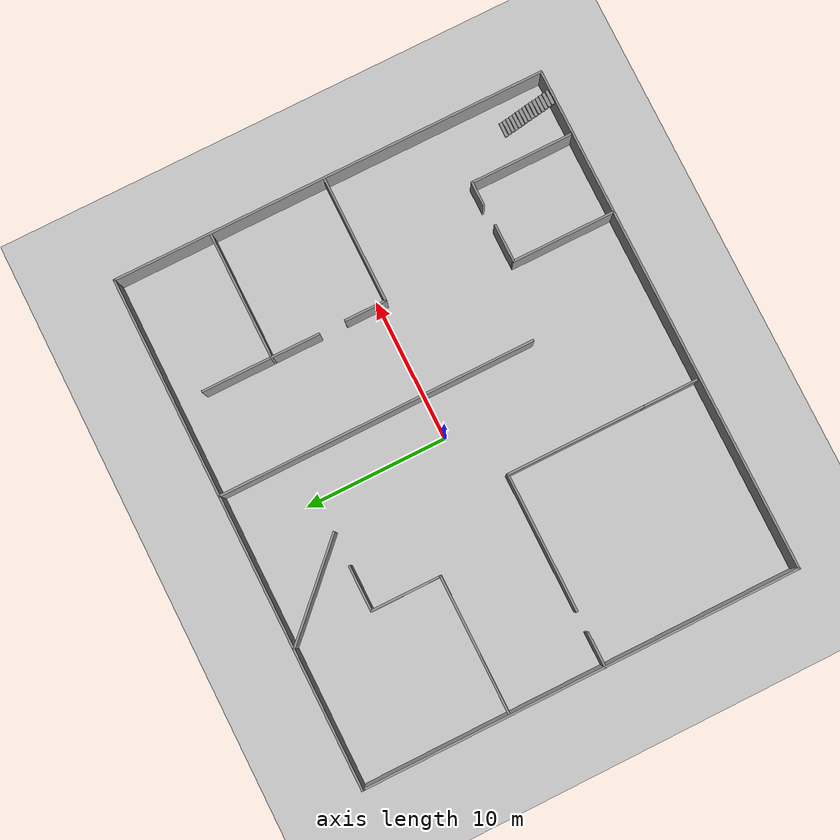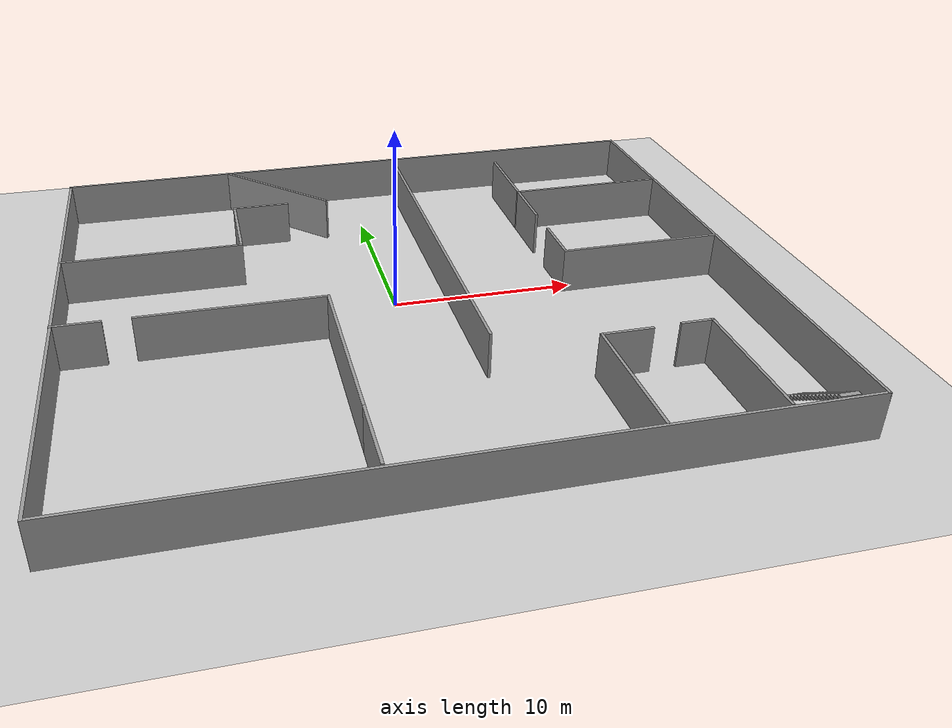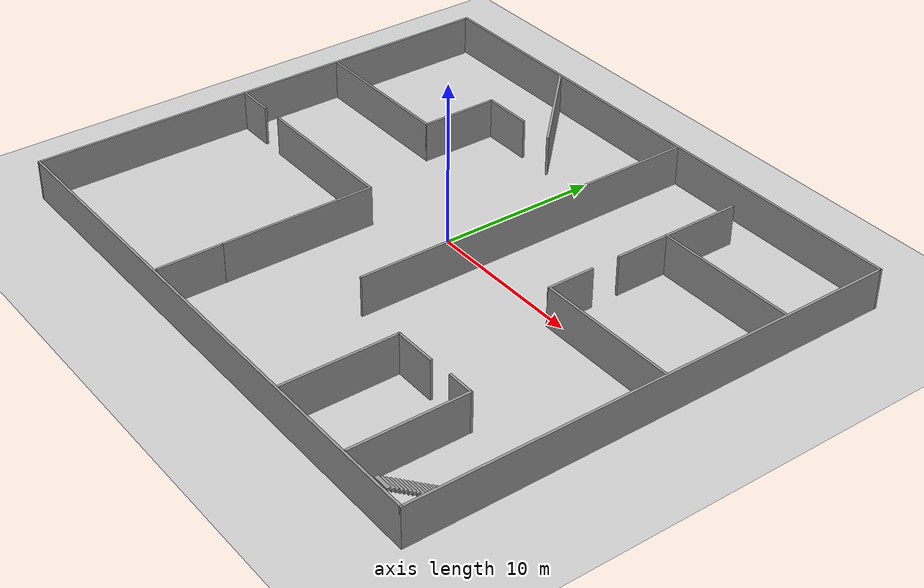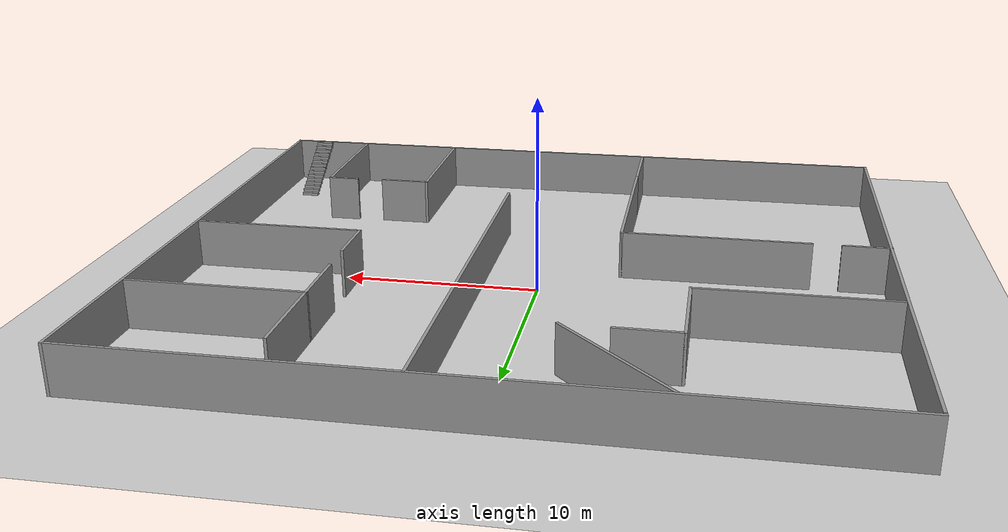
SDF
<sdf version="1.6">
 <world name="default">
  <light name="sun" type="directional">
   <pose>0 0 10 0 -0 0</pose>
   <diffuse>0.8 0.8 0.8 1</diffuse>
   <specular>0.2 0.2 0.2 1</specular>
   <attenuation>
    <range>1000</range>
    <constant>0.9</constant>
    <linear>0.01</linear>
    <quadratic>0.001</quadratic>
   </attenuation>
   <direction>-0.5 0.1 -0.9</direction>
   <spot><inner_angle>0</inner_angle><outer_angle>0</outer_angle><falloff>0</falloff></spot>
  </light>
  <model name="ground_plane">
   <static>1</static>
   <link name="link">
    <collision name="collision">
     <geometry><plane><normal>0 0 1</normal><size>100 100</size></plane></geometry>
     <surface><friction><ode><mu>100</mu><mu2>50</mu2></ode></friction></surface>
    </collision>
    <visual name="visual">
     <cast_shadows>0</cast_shadows>
     <geometry><plane><normal>0 0 1</normal><size>100 100</size></plane></geometry>
     <material>
      <script><uri>file://media/materials/scripts/gazebo.material</uri><name>Gazebo/Grey</name></script>
     </material>
    </visual>
   </link>
  </model>
  <gravity>0 0 -9.8</gravity>
  <magnetic_field>6e-06 2.3e-05 -4.2e-05</magnetic_field>
  <atmosphere type="adiabatic"/>
  <physics type="ode">
   <max_step_size>0.001</max_step_size>
   <real_time_factor>1</real_time_factor>
   <real_time_update_rate>1000</real_time_update_rate>
  </physics>
  <scene><ambient>0.4 0.4 0.4 1</ambient><background>0.7 0.7 0.7 1</background><shadows>1</shadows></scene>
  <spherical_coordinates>
   <surface_model>EARTH_WGS84</surface_model>
   <latitude_deg>0</latitude_deg>
   <longitude_deg>0</longitude_deg>
   <elevation>0</elevation>
   <heading_deg>0</heading_deg>
  </spherical_coordinates>
  <model name="Warehouse">
   <pose>5.0522 -0.852766 0 0 -0 0</pose>
   <link name="Stairs_0">
    <visual name="Stairs_0_Visual_0">
     <pose>11.55 -11.7825 0.083333 0 -0 0</pose>
     <geometry><box><size>1 0.233333 0.166667</size></box></geometry>
     <material>
      <script><uri>file://media/materials/scripts/gazebo.material</uri><name>Gazebo/Grey</name></script>
      <ambient>1 1 1 1</ambient>
     </material>
     <meta><layer>0</layer></meta>
    </visual>
    <collision name="Stairs_0_Collision_0">
     <geometry><box><size>1 0.233333 0.166667</size></box></geometry>
     <pose>11.55 -11.7825 0.083333 0 -0 0</pose>
    </collision>
    <visual name="Stairs_0_Visual_1">
     <pose>11.55 -12.0159 0.25 0 -0 0</pose>
     <geometry><box><size>1 0.233333 0.166667</size></box></geometry>
     <material>
      <script><uri>file://media/materials/scripts/gazebo.material</uri><name>Gazebo/Grey</name></script>
      <ambient>1 1 1 1</ambient>
     </material>
     <meta><layer>0</layer></meta>
    </visual>
    <collision name="Stairs_0_Collision_1">
     <geometry><box><size>1 0.233333 0.166667</size></box></geometry>
     <pose>11.55 -12.0159 0.25 0 -0 0</pose>
    </collision>
    <visual name="Stairs_0_Visual_2">
     <pose>11.55 -12.2492 0.416667 0 -0 0</pose>
     <geometry><box><size>1 0.233333 0.166667</size></box></geometry>
     <material>
      <script><uri>file://media/materials/scripts/gazebo.material</uri><name>Gazebo/Grey</name></script>
      <ambient>1 1 1 1</ambient>
     </material>
     <meta><layer>0</layer></meta>
    </visual>
    <collision name="Stairs_0_Collision_2">
     <geometry><box><size>1 0.233333 0.166667</size></box></geometry>
     <pose>11.55 -12.2492 0.416667 0 -0 0</pose>
    </collision>
    <visual name="Stairs_0_Visual_3">
     <pose>11.55 -12.4825 0.583333 0 -0 0</pose>
     <geometry><box><size>1 0.233333 0.166667</size></box></geometry>
     <material>
      <script><uri>file://media/materials/scripts/gazebo.material</uri><name>Gazebo/Grey</name></script>
      <ambient>1 1 1 1</ambient>
     </material>
     <meta><layer>0</layer></meta>
    </visual>
    <collision name="Stairs_0_Collision_3">
     <geometry><box><size>1 0.233333 0.166667</size></box></geometry>
     <pose>11.55 -12.4825 0.583333 0 -0 0</pose>
    </collision>
    <visual name="Stairs_0_Visual_4">
     <pose>11.55 -12.7159 0.75 0 -0 0</pose>
     <geometry><box><size>1 0.233333 0.166667</size></box></geometry>
     <material>
      <script><uri>file://media/materials/scripts/gazebo.material</uri><name>Gazebo/Grey</name></script>
      <ambient>1 1 1 1</ambient>
     </material>
     <meta><layer>0</layer></meta>
    </visual>
    <collision name="Stairs_0_Collision_4">
     <geometry><box><size>1 0.233333 0.166667</size></box></geometry>
     <pose>11.55 -12.7159 0.75 0 -0 0</pose>
    </collision>
    <visual name="Stairs_0_Visual_5">
     <pose>11.55 -12.9492 0.916667 0 -0 0</pose>
     <geometry><box><size>1 0.233333 0.166667</size></box></geometry>
     <material>
      <script><uri>file://media/materials/scripts/gazebo.material</uri><name>Gazebo/Grey</name></script>
      <ambient>1 1 1 1</ambient>
     </material>
     <meta><layer>0</layer></meta>
    </visual>
    <collision name="Stairs_0_Collision_5">
     <geometry><box><size>1 0.233333 0.166667</size></box></geometry>
     <pose>11.55 -12.9492 0.916667 0 -0 0</pose>
    </collision>
    <visual name="Stairs_0_Visual_6">
     <pose>11.55 -13.1825 1.08333 0 -0 0</pose>
     <geometry><box><size>1 0.233333 0.166667</size></box></geometry>
     <material>
      <script><uri>file://media/materials/scripts/gazebo.material</uri><name>Gazebo/Grey</name></script>
      <ambient>1 1 1 1</ambient>
     </material>
     <meta><layer>0</layer></meta>
    </visual>
    <collision name="Stairs_0_Collision_6">
     <geometry><box><size>1 0.233333 0.166667</size></box></geometry>
     <pose>11.55 -13.1825 1.08333 0 -0 0</pose>
    </collision>
    <visual name="Stairs_0_Visual_7">
     <pose>11.55 -13.4159 1.25 0 -0 0</pose>
     <geometry><box><size>1 0.233333 0.166667</size></box></geometry>
     <material>
      <script><uri>file://media/materials/scripts/gazebo.material</uri><name>Gazebo/Grey</name></script>
      <ambient>1 1 1 1</ambient>
     </material>
     <meta><layer>0</layer></meta>
    </visual>
    <collision name="Stairs_0_Collision_7">
     <geometry><box><size>1 0.233333 0.166667</size></box></geometry>
     <pose>11.55 -13.4159 1.25 0 -0 0</pose>
    </collision>
    <visual name="Stairs_0_Visual_8">
     <pose>11.55 -13.6492 1.41667 0 -0 0</pose>
     <geometry><box><size>1 0.233333 0.166667</size></box></geometry>
     <material>
      <script><uri>file://media/materials/scripts/gazebo.material</uri><name>Gazebo/Grey</name></script>
      <ambient>1 1 1 1</ambient>
     </material>
     <meta><layer>0</layer></meta>
    </visual>
    <collision name="Stairs_0_Collision_8">
     <geometry><box><size>1 0.233333 0.166667</size></box></geometry>
     <pose>11.55 -13.6492 1.41667 0 -0 0</pose>
    </collision>
    <visual name="Stairs_0_Visual_9">
     <pose>11.55 -13.8825 1.58333 0 -0 0</pose>
     <geometry><box><size>1 0.233333 0.166667</size></box></geometry>
     <material>
      <script><uri>file://media/materials/scripts/gazebo.material</uri><name>Gazebo/Grey</name></script>
      <ambient>1 1 1 1</ambient>
     </material>
     <meta><layer>0</layer></meta>
    </visual>
    <collision name="Stairs_0_Collision_9">
     <geometry><box><size>1 0.233333 0.166667</size></box></geometry>
     <pose>11.55 -13.8825 1.58333 0 -0 0</pose>
    </collision>
    <visual name="Stairs_0_Visual_10">
     <pose>11.55 -14.1159 1.75 0 -0 0</pose>
     <geometry><box><size>1 0.233333 0.166667</size></box></geometry>
     <material>
      <script><uri>file://media/materials/scripts/gazebo.material</uri><name>Gazebo/Grey</name></script>
      <ambient>1 1 1 1</ambient>
     </material>
     <meta><layer>0</layer></meta>
    </visual>
    <collision name="Stairs_0_Collision_10">
     <geometry><box><size>1 0.233333 0.166667</size></box></geometry>
     <pose>11.55 -14.1159 1.75 0 -0 0</pose>
    </collision>
    <visual name="Stairs_0_Visual_11">
     <pose>11.55 -14.3492 1.91667 0 -0 0</pose>
     <geometry><box><size>1 0.233333 0.166667</size></box></geometry>
     <material>
      <script><uri>file://media/materials/scripts/gazebo.material</uri><name>Gazebo/Grey</name></script>
      <ambient>1 1 1 1</ambient>
     </material>
     <meta><layer>0</layer></meta>
    </visual>
    <collision name="Stairs_0_Collision_11">
     <geometry><box><size>1 0.233333 0.166667</size></box></geometry>
     <pose>11.55 -14.3492 1.91667 0 -0 0</pose>
    </collision>
    <visual name="Stairs_0_Visual_12">
     <pose>11.55 -14.5825 2.08333 0 -0 0</pose>
     <geometry><box><size>1 0.233333 0.166667</size></box></geometry>
     <material>
      <script><uri>file://media/materials/scripts/gazebo.material</uri><name>Gazebo/Grey</name></script>
      <ambient>1 1 1 1</ambient>
     </material>
     <meta><layer>0</layer></meta>
    </visual>
    <collision name="Stairs_0_Collision_12">
     <geometry><box><size>1 0.233333 0.166667</size></box></geometry>
     <pose>11.55 -14.5825 2.08333 0 -0 0</pose>
    </collision>
    <visual name="Stairs_0_Visual_13">
     <pose>11.55 -14.8159 2.25 0 -0 0</pose>
     <geometry><box><size>1 0.233333 0.166667</size></box></geometry>
     <material>
      <script><uri>file://media/materials/scripts/gazebo.material</uri><name>Gazebo/Grey</name></script>
      <ambient>1 1 1 1</ambient>
     </material>
     <meta><layer>0</layer></meta>
    </visual>
    <collision name="Stairs_0_Collision_13">
     <geometry><box><size>1 0.233333 0.166667</size></box></geometry>
     <pose>11.55 -14.8159 2.25 0 -0 0</pose>
    </collision>
    <visual name="Stairs_0_Visual_14">
     <pose>11.55 -15.0492 2.41667 0 -0 0</pose>
     <geometry><box><size>1 0.233333 0.166667</size></box></geometry>
     <material>
      <script><uri>file://media/materials/scripts/gazebo.material</uri><name>Gazebo/Grey</name></script>
      <ambient>1 1 1 1</ambient>
     </material>
     <meta><layer>0</layer></meta>
    </visual>
    <collision name="Stairs_0_Collision_14">
     <geometry><box><size>1 0.233333 0.166667</size></box></geometry>
     <pose>11.55 -15.0492 2.41667 0 -0 0</pose>
    </collision>
   </link>
   <link name="Wall_0">
    <collision name="Wall_0_Collision">
     <geometry><box><size>30.5 0.15 2.5</size></box></geometry>
     <pose>0 0 1.25 0 -0 0</pose>
    </collision>
    <visual name="Wall_0_Visual">
     <pose>0 0 1.25 0 -0 0</pose>
     <geometry><box><size>30.5 0.15 2.5</size></box></geometry>
     <material>
      <script><uri>file://media/materials/scripts/gazebo.material</uri><name>Gazebo/Grey</name></script>
      <ambient>1 1 1 1</ambient>
     </material>
     <meta><layer>0</layer></meta>
    </visual>
    <pose>-22.5188 -0.125 0 0 -0 -1.5708</pose>
   </link>
   <link name="Wall_1">
    <collision name="Wall_1_Collision">
     <geometry><box><size>36 0.15 2.5</size></box></geometry>
     <pose>0 0 1.25 0 -0 0</pose>
    </collision>
    <visual name="Wall_1_Visual">
     <pose>0 0 1.25 0 -0 0</pose>
     <geometry><box><size>36 0.15 2.5</size></box></geometry>
     <material>
      <script><uri>file://media/materials/scripts/gazebo.material</uri><name>Gazebo/Grey</name></script>
      <ambient>1 1 1 1</ambient>
     </material>
     <meta><layer>0</layer></meta>
    </visual>
    <pose>-4.59381 -15.3 0 0 -0 0</pose>
   </link>
   <link name="Wall_10">
    <collision name="Wall_10_Collision">
     <geometry><box><size>3 0.15 2.5</size></box></geometry>
     <pose>0 0 1.25 0 -0 0</pose>
    </collision>
    <visual name="Wall_10_Visual">
     <pose>0 0 1.25 0 -0 0</pose>
     <geometry><box><size>3 0.15 2.5</size></box></geometry>
     <material>
      <script><uri>file://media/materials/scripts/gazebo.material</uri><name>Gazebo/Grey</name></script>
      <ambient>1 1 1 1</ambient>
     </material>
     <meta><layer>0</layer></meta>
    </visual>
    <pose>4.38435 1.78761 0 0 -0 -1.5708</pose>
   </link>
   <link name="Wall_11">
    <collision name="Wall_11_Collision">
     <geometry><box><size>9 0.15 2.5</size></box></geometry>
     <pose>0 0 1.25 0 -0 0</pose>
    </collision>
    <visual name="Wall_11_Visual">
     <pose>0 0 1.25 0 -0 0</pose>
     <geometry><box><size>9 0.15 2.5</size></box></geometry>
     <material>
      <script><uri>file://media/materials/scripts/gazebo.material</uri><name>Gazebo/Grey</name></script>
      <ambient>1 1 1 1</ambient>
     </material>
     <meta><layer>0</layer></meta>
    </visual>
    <pose>8.80935 0.36261 0 0 -0 0</pose>
   </link>
   <link name="Wall_13">
    <collision name="Wall_13_Collision">
     <geometry><box><size>22.25 0.15 2.5</size></box></geometry>
     <pose>0 0 1.25 0 -0 0</pose>
    </collision>
    <visual name="Wall_13_Visual">
     <pose>0 0 1.25 0 -0 0</pose>
     <geometry><box><size>22.25 0.15 2.5</size></box></geometry>
     <material>
      <script><uri>file://media/materials/scripts/gazebo.material</uri><name>Gazebo/Grey</name></script>
      <ambient>1 1 1 1</ambient>
     </material>
     <meta><layer>0</layer></meta>
    </visual>
    <pose>-2.12024 4.17658 0 0 -0 -1.5708</pose>
   </link>
   <link name="Wall_15">
    <collision name="Wall_15_Collision">
     <geometry><box><size>7.75 0.15 2.5</size></box></geometry>
     <pose>0 0 1.25 0 -0 0</pose>
    </collision>
    <visual name="Wall_15_Visual">
     <pose>0 0 1.25 0 -0 0</pose>
     <geometry><box><size>7.75 0.15 2.5</size></box></geometry>
     <material>
      <script><uri>file://media/materials/scripts/gazebo.material</uri><name>Gazebo/Grey</name></script>
      <ambient>1 1 1 1</ambient>
     </material>
     <meta><layer>0</layer></meta>
    </visual>
    <pose>-10.0928 12.5396 0 0 -0 -0.785398</pose>
   </link>
   <link name="Wall_17">
    <collision name="Wall_17_Collision">
     <geometry><box><size>9.75 0.15 2.5</size></box></geometry>
     <pose>0 0 1.25 0 -0 0</pose>
    </collision>
    <visual name="Wall_17_Visual">
     <pose>0 0 1.25 0 -0 0</pose>
     <geometry><box><size>9.75 0.15 2.5</size></box></geometry>
     <material>
      <script><uri>file://media/materials/scripts/gazebo.material</uri><name>Gazebo/Grey</name></script>
      <ambient>1 1 1 1</ambient>
     </material>
     <meta><layer>0</layer></meta>
    </visual>
    <pose>-17.6629 5.05525 0 0 -0 0</pose>
   </link>
   <link name="Wall_18">
    <collision name="Wall_18_Collision">
     <geometry><box><size>5 0.15 2.5</size></box></geometry>
     <pose>0 0 1.25 0 -0 0</pose>
    </collision>
    <visual name="Wall_18_Visual">
     <pose>0 0 1.25 0 -0 0</pose>
     <geometry><box><size>5 0.15 2.5</size></box></geometry>
     <material>
      <script><uri>file://media/materials/scripts/gazebo.material</uri><name>Gazebo/Grey</name></script>
      <ambient>1 1 1 1</ambient>
     </material>
     <meta><layer>0</layer></meta>
    </visual>
    <pose>-12.8629 7.48025 0 0 -0 1.5708</pose>
   </link>
   <link name="Wall_19">
    <collision name="Wall_19_Collision">
     <geometry><box><size>3.25 0.15 2.5</size></box></geometry>
     <pose>0 0 1.25 0 -0 0</pose>
    </collision>
    <visual name="Wall_19_Visual">
     <pose>0 0 1.25 0 -0 0</pose>
     <geometry><box><size>3.25 0.15 2.5</size></box></geometry>
     <material>
      <script><uri>file://media/materials/scripts/gazebo.material</uri><name>Gazebo/Grey</name></script>
      <ambient>1 1 1 1</ambient>
     </material>
     <meta><layer>0</layer></meta>
    </visual>
    <pose>-11.3129 9.90525 0 0 -0 0</pose>
   </link>
   <link name="Wall_2">
    <collision name="Wall_2_Collision">
     <geometry><box><size>30.75 0.15 2.5</size></box></geometry>
     <pose>0 0 1.25 0 -0 0</pose>
    </collision>
    <visual name="Wall_2_Visual">
     <pose>0 0 1.25 0 -0 0</pose>
     <geometry><box><size>30.75 0.15 2.5</size></box></geometry>
     <material>
      <script><uri>file://media/materials/scripts/gazebo.material</uri><name>Gazebo/Grey</name></script>
      <ambient>1 1 1 1</ambient>
     </material>
     <meta><layer>0</layer></meta>
    </visual>
    <pose>13.3312 0 0 0 -0 1.5708</pose>
   </link>
   <link name="Wall_21">
    <collision name="Wall_21_Collision">
     <geometry><box><size>9.75 0.15 2.5</size></box></geometry>
     <pose>0 0 1.25 0 -0 0</pose>
    </collision>
    <visual name="Wall_21_Visual">
     <pose>0 0 1.25 0 -0 0</pose>
     <geometry><box><size>9.75 0.15 2.5</size></box></geometry>
     <material>
      <script><uri>file://media/materials/scripts/gazebo.material</uri><name>Gazebo/Grey</name></script>
      <ambient>1 1 1 1</ambient>
     </material>
     <meta><layer>0</layer></meta>
    </visual>
    <pose>-13.8385 -1.61714 0 0 -0 0</pose>
   </link>
   <link name="Wall_22">
    <collision name="Wall_22_Collision">
     <geometry><box><size>9.75 0.15 2.5</size></box></geometry>
     <pose>0 0 1.25 0 -0 0</pose>
    </collision>
    <visual name="Wall_22_Visual">
     <pose>0 0 1.25 0 -0 0</pose>
     <geometry><box><size>9.75 0.15 2.5</size></box></geometry>
     <material>
      <script><uri>file://media/materials/scripts/gazebo.material</uri><name>Gazebo/Grey</name></script>
      <ambient>1 1 1 1</ambient>
     </material>
     <meta><layer>0</layer></meta>
    </visual>
    <pose>-9.03848 -6.41714 0 0 -0 -1.5708</pose>
   </link>
   <link name="Wall_23">
    <collision name="Wall_23_Collision">
     <geometry><box><size>4 0.15 2.5</size></box></geometry>
     <pose>0 0 1.25 0 -0 0</pose>
    </collision>
    <visual name="Wall_23_Visual">
     <pose>0 0 1.25 0 -0 0</pose>
     <geometry><box><size>4 0.15 2.5</size></box></geometry>
     <material>
      <script><uri>file://media/materials/scripts/gazebo.material</uri><name>Gazebo/Grey</name></script>
      <ambient>1 1 1 1</ambient>
     </material>
     <meta><layer>0</layer></meta>
    </visual>
    <pose>-9.03848 -13.1421 0 0 -0 -1.5708</pose>
   </link>
   <link name="Wall_25">
    <collision name="Wall_25_Collision">
     <geometry><box><size>2.5 0.15 2.5</size></box></geometry>
     <pose>0 0 1.25 0 -0 0</pose>
    </collision>
    <visual name="Wall_25_Visual">
     <pose>0 0 1.25 0 -0 0</pose>
     <geometry><box><size>2.5 0.15 2.5</size></box></geometry>
     <material>
      <script><uri>file://media/materials/scripts/gazebo.material</uri><name>Gazebo/Grey</name></script>
      <ambient>1 1 1 1</ambient>
     </material>
     <meta><layer>0</layer></meta>
    </visual>
    <pose>-21.3693 -1.61714 0 0 -0 0</pose>
   </link>
   <link name="Wall_27">
    <collision name="Wall_27_Collision">
     <geometry><box><size>7.25 0.15 2.5</size></box></geometry>
     <pose>0 0 1.25 0 -0 0</pose>
    </collision>
    <visual name="Wall_27_Visual">
     <pose>0 0 1.25 0 -0 0</pose>
     <geometry><box><size>7.25 0.15 2.5</size></box></geometry>
     <material>
      <script><uri>file://media/materials/scripts/gazebo.material</uri><name>Gazebo/Grey</name></script>
      <ambient>1 1 1 1</ambient>
     </material>
     <meta><layer>0</layer></meta>
    </visual>
    <pose>8.78342 -11.5747 0 0 -0 1.5708</pose>
   </link>
   <link name="Wall_28">
    <collision name="Wall_28_Collision">
     <geometry><box><size>1.75 0.15 2.5</size></box></geometry>
     <pose>0 0 1.25 0 -0 0</pose>
    </collision>
    <visual name="Wall_28_Visual">
     <pose>0 0 1.25 0 -0 0</pose>
     <geometry><box><size>1.75 0.15 2.5</size></box></geometry>
     <material>
      <script><uri>file://media/materials/scripts/gazebo.material</uri><name>Gazebo/Grey</name></script>
      <ambient>1 1 1 1</ambient>
     </material>
     <meta><layer>0</layer></meta>
    </visual>
    <pose>7.98342 -8.02466 0 0 -0 3.14159</pose>
   </link>
   <link name="Wall_3">
    <collision name="Wall_3_Collision">
     <geometry><box><size>36 0.15 2.5</size></box></geometry>
     <pose>0 0 1.25 0 -0 0</pose>
    </collision>
    <visual name="Wall_3_Visual">
     <pose>0 0 1.25 0 -0 0</pose>
     <geometry><box><size>36 0.15 2.5</size></box></geometry>
     <material>
      <script><uri>file://media/materials/scripts/gazebo.material</uri><name>Gazebo/Grey</name></script>
      <ambient>1 1 1 1</ambient>
     </material>
     <meta><layer>0</layer></meta>
    </visual>
    <pose>-4.59381 15.3 0 0 -0 3.14159</pose>
   </link>
   <link name="Wall_30">
    <collision name="Wall_30_Collision">
     <geometry><box><size>7.25 0.15 2.5</size></box></geometry>
     <pose>0 0 1.25 0 -0 0</pose>
    </collision>
    <visual name="Wall_30_Visual">
     <pose>0 0 1.25 0 -0 0</pose>
     <geometry><box><size>7.25 0.15 2.5</size></box></geometry>
     <material>
      <script><uri>file://media/materials/scripts/gazebo.material</uri><name>Gazebo/Grey</name></script>
      <ambient>1 1 1 1</ambient>
     </material>
     <meta><layer>0</layer></meta>
    </visual>
    <pose>3.0061 -11.656 0 0 -0 1.5708</pose>
   </link>
   <link name="Wall_31">
    <collision name="Wall_31_Collision">
     <geometry><box><size>2.75 0.15 2.5</size></box></geometry>
     <pose>0 0 1.25 0 -0 0</pose>
    </collision>
    <visual name="Wall_31_Visual">
     <pose>0 0 1.25 0 -0 0</pose>
     <geometry><box><size>2.75 0.15 2.5</size></box></geometry>
     <material>
      <script><uri>file://media/materials/scripts/gazebo.material</uri><name>Gazebo/Grey</name></script>
      <ambient>1 1 1 1</ambient>
     </material>
     <meta><layer>0</layer></meta>
    </visual>
    <pose>4.30611 -8.10603 0 0 -0 0</pose>
   </link>
   <link name="Wall_5">
    <collision name="Wall_5_Collision">
     <geometry><box><size>9 0.15 2.5</size></box></geometry>
     <pose>0 0 1.25 0 -0 0</pose>
    </collision>
    <visual name="Wall_5_Visual">
     <pose>0 0 1.25 0 -0 0</pose>
     <geometry><box><size>9 0.15 2.5</size></box></geometry>
     <material>
      <script><uri>file://media/materials/scripts/gazebo.material</uri><name>Gazebo/Grey</name></script>
      <ambient>1 1 1 1</ambient>
     </material>
     <meta><layer>0</layer></meta>
    </visual>
    <pose>8.78359 8.48563 0 0 -0 3.14159</pose>
   </link>
   <link name="Wall_6">
    <collision name="Wall_6_Collision">
     <geometry><box><size>5 0.15 2.5</size></box></geometry>
     <pose>0 0 1.25 0 -0 0</pose>
    </collision>
    <visual name="Wall_6_Visual">
     <pose>0 0 1.25 0 -0 0</pose>
     <geometry><box><size>5 0.15 2.5</size></box></geometry>
     <material>
      <script><uri>file://media/materials/scripts/gazebo.material</uri><name>Gazebo/Grey</name></script>
      <ambient>1 1 1 1</ambient>
     </material>
     <meta><layer>0</layer></meta>
    </visual>
    <pose>4.35859 10.9106 0 0 -0 1.5708</pose>
   </link>
   <link name="Wall_8">
    <collision name="Wall_8_Collision">
     <geometry><box><size>3.5 0.15 2.5</size></box></geometry>
     <pose>0 0 1.25 0 -0 0</pose>
    </collision>
    <visual name="Wall_8_Visual">
     <pose>0 0 1.25 0 -0 0</pose>
     <geometry><box><size>3.5 0.15 2.5</size></box></geometry>
     <material>
      <script><uri>file://media/materials/scripts/gazebo.material</uri><name>Gazebo/Grey</name></script>
      <ambient>1 1 1 1</ambient>
     </material>
     <meta><layer>0</layer></meta>
    </visual>
    <pose>4.35859 6.81063 0 0 -0 -1.5708</pose>
   </link>
   <static>1</static>
  </model>
 </world>
</sdf>
